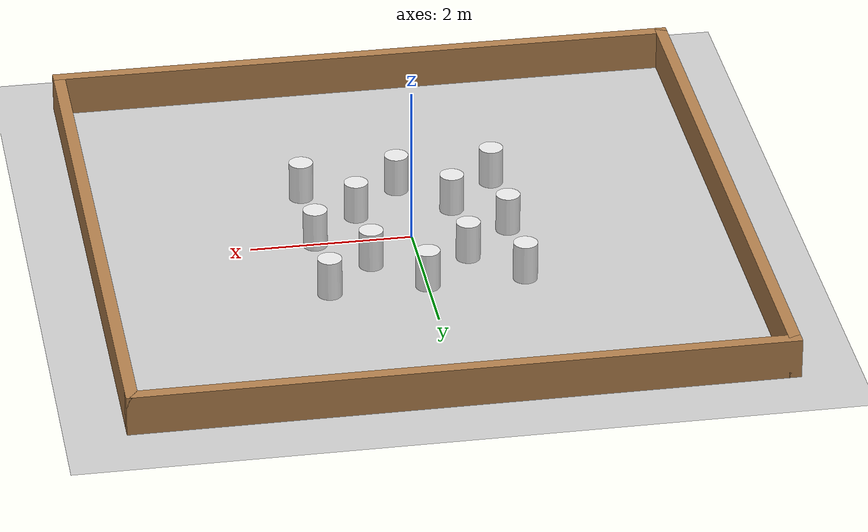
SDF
<sdf version="1.7">
 <world name="default">
  <light name="sun" type="directional">
   <pose>0 0 10 0 -0 0</pose>
   <diffuse>0.8 0.8 0.8 1</diffuse>
   <specular>0.2 0.2 0.2 1</specular>
   <attenuation>
    <range>1000</range>
    <constant>0.9</constant>
    <linear>0.01</linear>
    <quadratic>0.001</quadratic>
   </attenuation>
   <direction>-0.5 0.1 -0.9</direction>
   <spot><inner_angle>0</inner_angle><outer_angle>0</outer_angle><falloff>0</falloff></spot>
  </light>
  <model name="ground_plane">
   <static>1</static>
   <link name="link">
    <collision name="collision">
     <geometry><plane><normal>0 0 1</normal><size>100 100</size></plane></geometry>
     <surface><friction><ode><mu>100</mu><mu2>50</mu2></ode></friction></surface>
    </collision>
    <visual name="visual">
     <cast_shadows>0</cast_shadows>
     <geometry><plane><normal>0 0 1</normal><size>100 100</size></plane></geometry>
     <material>
      <script><uri>file://media/materials/scripts/gazebo.material</uri><name>Gazebo/Grey</name></script>
     </material>
    </visual>
   </link>
  </model>
  <physics type="ode">
   <real_time_update_rate>1000</real_time_update_rate>
   <max_step_size>0.001</max_step_size>
   <real_time_factor>1</real_time_factor>
   <ode>
    <solver>
     <type>quick</type>
     <iters>150</iters>
     <precon_iters>0</precon_iters>
     <sor>1.4</sor>
     <use_dynamic_moi_rescaling>1</use_dynamic_moi_rescaling>
    </solver>
    <constraints>
     <cfm>1e-05</cfm>
     <erp>0.2</erp>
     <contact_max_correcting_vel>2000</contact_max_correcting_vel>
     <contact_surface_layer>0.01</contact_surface_layer>
    </constraints>
   </ode>
  </physics>
  <model name="turtlebot3_square">
   <link name="Wall_0">
    <collision name="Wall_0_Collision">
     <geometry><box><size>8 0.15 0.5</size></box></geometry>
     <pose>0 0 0.25 0 -0 0</pose>
    </collision>
    <visual name="Wall_0_Visual">
     <pose>0 0 0.25 0 -0 0</pose>
     <geometry><box><size>8 0.15 0.5</size></box></geometry>
     <material>
      <script><uri>file://media/materials/scripts/gazebo.material</uri><name>Gazebo/Wood</name></script>
      <ambient>1 1 1 1</ambient>
     </material>
    </visual>
    <pose>0 3.925 0 0 -0 0</pose>
   </link>
   <link name="Wall_2">
    <collision name="Wall_2_Collision">
     <geometry><box><size>8 0.15 0.5</size></box></geometry>
     <pose>0 0 0.25 0 -0 0</pose>
    </collision>
    <visual name="Wall_2_Visual">
     <pose>0 0 0.25 0 -0 0</pose>
     <geometry><box><size>8 0.15 0.5</size></box></geometry>
     <material>
      <script><uri>file://media/materials/scripts/gazebo.material</uri><name>Gazebo/Wood</name></script>
      <ambient>1 1 1 1</ambient>
     </material>
    </visual>
    <pose>-3.925 0 0 0 0 -1.5708</pose>
   </link>
   <link name="Wall_3">
    <collision name="Wall_3_Collision">
     <geometry><box><size>8 0.15 0.5</size></box></geometry>
     <pose>0 0 0.25 0 -0 0</pose>
    </collision>
    <visual name="Wall_3_Visual">
     <pose>0 0 0.25 0 -0 0</pose>
     <geometry><box><size>8 0.15 0.5</size></box></geometry>
     <material>
      <script><uri>file://media/materials/scripts/gazebo.material</uri><name>Gazebo/Wood</name></script>
      <ambient>1 1 1 1</ambient>
     </material>
    </visual>
    <pose>0 -3.925 0 0 -0 0</pose>
   </link>
   <link name="Wall_4">
    <collision name="Wall_4_Collision">
     <geometry><box><size>8 0.15 0.5</size></box></geometry>
     <pose>0 0 0.25 0 -0 0</pose>
    </collision>
    <visual name="Wall_4_Visual">
     <pose>0 0 0.25 0 -0 0</pose>
     <geometry><box><size>8 0.15 0.5</size></box></geometry>
     <material>
      <script><uri>file://media/materials/scripts/gazebo.material</uri><name>Gazebo/Wood</name></script>
      <ambient>1 1 1 1</ambient>
     </material>
    </visual>
    <pose>3.925 0 0 0 -0 1.5708</pose>
   </link>
   <static>1</static>
  </model>
  <model name="obstacle">
   <link name="obstacle">
    <collision name="obstacle_1">
     <pose>-0.6 -0.6 0.25 0 -0 0</pose>
     <geometry><cylinder><radius>0.15</radius><length>0.5</length></cylinder></geometry>
    </collision>
    <visual name="obstacle_1">
     <pose>-1.2 -1.2 0.25 0 -0 0</pose>
     <geometry><cylinder><radius>0.15</radius><length>0.5</length></cylinder></geometry>
     <material>
      <script><uri>file://media/materials/scripts/gazebo.material</uri><name>Gazebo/White</name></script>
     </material>
    </visual>
    <collision name="obstacle_2">
     <pose>-1.2 1.2 0.25 0 -0 0</pose>
     <geometry><cylinder><radius>0.15</radius><length>0.5</length></cylinder></geometry>
    </collision>
    <visual name="obstacle_2">
     <pose>-1.2 1.2 0.25 0 -0 0</pose>
     <geometry><cylinder><radius>0.15</radius><length>0.5</length></cylinder></geometry>
     <material>
      <script><uri>file://media/materials/scripts/gazebo.material</uri><name>Gazebo/White</name></script>
     </material>
    </visual>
    <collision name="obstacle_3">
     <pose>0.0 -1.2 0.25 0 -0 0</pose>
     <geometry><cylinder><radius>0.15</radius><length>0.5</length></cylinder></geometry>
    </collision>
    <visual name="obstacle_3">
     <pose>0.0 -1.2 0.25 0 -0 0</pose>
     <geometry><cylinder><radius>0.15</radius><length>0.5</length></cylinder></geometry>
     <material>
      <script><uri>file://media/materials/scripts/gazebo.material</uri><name>Gazebo/White</name></script>
     </material>
    </visual>
    <collision name="obstacle_4">
     <pose>0.0 1.2 0.25 0 -0 0</pose>
     <geometry><cylinder><radius>0.15</radius><length>0.5</length></cylinder></geometry>
    </collision>
    <visual name="obstacle_4">
     <pose>0.0 1.2 0.25 0 -0 0</pose>
     <geometry><cylinder><radius>0.15</radius><length>0.5</length></cylinder></geometry>
     <material>
      <script><uri>file://media/materials/scripts/gazebo.material</uri><name>Gazebo/White</name></script>
     </material>
    </visual>
    <collision name="obstacle_5">
     <pose>1.2 1.2 0.25 0 -0 0</pose>
     <geometry><cylinder><radius>0.15</radius><length>0.5</length></cylinder></geometry>
    </collision>
    <visual name="obstacle_5">
     <pose>1.2 1.2 0.25 0 -0 0</pose>
     <geometry><cylinder><radius>0.15</radius><length>0.5</length></cylinder></geometry>
     <material>
      <script><uri>file://media/materials/scripts/gazebo.material</uri><name>Gazebo/White</name></script>
     </material>
    </visual>
    <collision name="obstacle_6">
     <pose>1.2 -1.2 0.25 0 -0 0</pose>
     <geometry><cylinder><radius>0.15</radius><length>0.5</length></cylinder></geometry>
    </collision>
    <visual name="obstacle_6">
     <pose>1.2 -1.2 0.25 0 -0 0</pose>
     <geometry><cylinder><radius>0.15</radius><length>0.5</length></cylinder></geometry>
     <material>
      <script><uri>file://media/materials/scripts/gazebo.material</uri><name>Gazebo/White</name></script>
     </material>
    </visual>
    <collision name="obstacle_7">
     <pose>1.2 0.0 0.25 0 -0 0</pose>
     <geometry><cylinder><radius>0.15</radius><length>0.5</length></cylinder></geometry>
    </collision>
    <visual name="obstacle_7">
     <pose>1.2 0.0 0.25 0 -0 0</pose>
     <geometry><cylinder><radius>0.15</radius><length>0.5</length></cylinder></geometry>
     <material>
      <script><uri>file://media/materials/scripts/gazebo.material</uri><name>Gazebo/White</name></script>
     </material>
    </visual>
    <collision name="obstacle_8">
     <pose>-1.2 0.0 0.25 0 -0 0</pose>
     <geometry><cylinder><radius>0.15</radius><length>0.5</length></cylinder></geometry>
    </collision>
    <visual name="obstacle_8">
     <pose>-1.2 0.0 0.25 0 -0 0</pose>
     <geometry><cylinder><radius>0.15</radius><length>0.5</length></cylinder></geometry>
     <material>
      <script><uri>file://media/materials/scripts/gazebo.material</uri><name>Gazebo/White</name></script>
     </material>
    </visual>
    <collision name="obstacle_9">
     <pose>0.6 0.6 0.25 0 -0 0</pose>
     <geometry><cylinder><radius>0.15</radius><length>0.5</length></cylinder></geometry>
    </collision>
    <visual name="obstacle_9">
     <pose>0.6 0.6 0.25 0 -0 0</pose>
     <geometry><cylinder><radius>0.15</radius><length>0.5</length></cylinder></geometry>
     <material>
      <script><uri>file://media/materials/scripts/gazebo.material</uri><name>Gazebo/White</name></script>
     </material>
    </visual>
    <collision name="obstacle_10">
     <pose>0.6 -0.6 0.25 0 -0 0</pose>
     <geometry><cylinder><radius>0.15</radius><length>0.5</length></cylinder></geometry>
    </collision>
    <visual name="obstacle_10">
     <pose>0.6 -0.6 0.25 0 -0 0</pose>
     <geometry><cylinder><radius>0.15</radius><length>0.5</length></cylinder></geometry>
     <material>
      <script><uri>file://media/materials/scripts/gazebo.material</uri><name>Gazebo/White</name></script>
     </material>
    </visual>
    <collision name="obstacle_11">
     <pose>-0.6 -0.6 0.25 0 -0 0</pose>
     <geometry><cylinder><radius>0.15</radius><length>0.5</length></cylinder></geometry>
    </collision>
    <visual name="obstacle_11">
     <pose>-0.6 -0.6 0.25 0 -0 0</pose>
     <geometry><cylinder><radius>0.15</radius><length>0.5</length></cylinder></geometry>
     <material>
      <script><uri>file://media/materials/scripts/gazebo.material</uri><name>Gazebo/White</name></script>
     </material>
    </visual>
    <collision name="obstacle_12">
     <pose>-0.6 0.6 0.25 0 -0 0</pose>
     <geometry><cylinder><radius>0.15</radius><length>0.5</length></cylinder></geometry>
    </collision>
    <visual name="obstacle_12">
     <pose>-0.6 0.6 0.25 0 -0 0</pose>
     <geometry><cylinder><radius>0.15</radius><length>0.5</length></cylinder></geometry>
     <material>
      <script><uri>file://media/materials/scripts/gazebo.material</uri><name>Gazebo/White</name></script>
     </material>
    </visual>
   </link>
   <static>1</static>
  </model>
  <scene><ambient>0.4 0.4 0.4 1</ambient><background>0.7 0.7 0.7 1</background><shadows>1</shadows></scene>
  <gravity>0 0 -9.8</gravity>
  <magnetic_field>6e-06 2.3e-05 -4.2e-05</magnetic_field>
  <atmosphere type="adiabatic"/>
  <spherical_coordinates>
   <surface_model>EARTH_WGS84</surface_model>
   <latitude_deg>0</latitude_deg>
   <longitude_deg>0</longitude_deg>
   <elevation>0</elevation>
   <heading_deg>0</heading_deg>
  </spherical_coordinates>
 </world>
</sdf>
